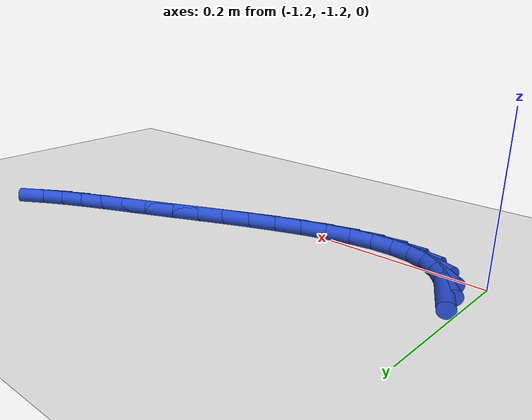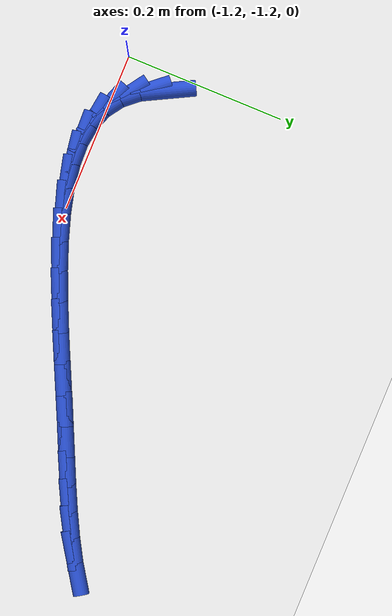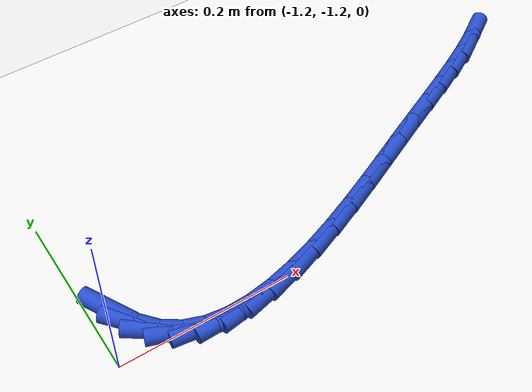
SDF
<sdf version="1.6">
 <world name="default">
  <model name="ground_plane">
   <static>1</static>
   <link name="link">
    <collision name="collision">
     <geometry><plane><normal>0 0 1</normal><size>100 100</size></plane></geometry>
     <surface><friction><ode><mu>100</mu><mu2>50</mu2></ode></friction></surface>
    </collision>
    <visual name="visual">
     <cast_shadows>0</cast_shadows>
     <geometry><plane><normal>0 0 1</normal><size>100 100</size></plane></geometry>
     <material>
      <script><uri>file://media/materials/scripts/gazebo.material</uri><name>Gazebo/WhiteGlow</name></script>
     </material>
    </visual>
   </link>
  </model>
  <model name="line">
   <link name="link_186">
    <pose>-1.1766028740405785 -1.1448081477415086 0.01 0 1.57 -1.0894566197588766</pose>
    <collision name="collision">
     <geometry><cylinder><radius>0.01</radius><length>0.08</length></cylinder></geometry>
    </collision>
    <visual name="visual">
     <material>
      <script><name>Gazebo/Blue</name><uri>file://media/materials/scripts/gazebo.material</uri></script>
     </material>
     <geometry><cylinder><radius>0.01</radius><length>0.08</length></cylinder></geometry>
    </visual>
   </link>
   <link name="link_187">
    <pose>-1.1635276885617831 -1.1698412968110778 0.01 0 1.57 -0.8635601120456357</pose>
    <collision name="collision">
     <geometry><cylinder><radius>0.01</radius><length>0.08</length></cylinder></geometry>
    </collision>
    <visual name="visual">
     <material>
      <script><name>Gazebo/Blue</name><uri>file://media/materials/scripts/gazebo.material</uri></script>
     </material>
     <geometry><cylinder><radius>0.01</radius><length>0.08</length></cylinder></geometry>
    </visual>
   </link>
   <link name="link_188">
    <pose>-1.1471648637215601 -1.1889850504934512 0.01 0 1.57 -0.600858885222188</pose>
    <collision name="collision">
     <geometry><cylinder><radius>0.01</radius><length>0.08</length></cylinder></geometry>
    </collision>
    <visual name="visual">
     <material>
      <script><name>Gazebo/Blue</name><uri>file://media/materials/scripts/gazebo.material</uri></script>
     </material>
     <geometry><cylinder><radius>0.01</radius><length>0.08</length></cylinder></geometry>
    </visual>
   </link>
   <link name="link_189">
    <pose>-1.1276044789210666 -1.2023917075368833 0.01 0 1.57 -0.349300942034176</pose>
    <collision name="collision">
     <geometry><cylinder><radius>0.01</radius><length>0.08</length></cylinder></geometry>
    </collision>
    <visual name="visual">
     <material>
      <script><name>Gazebo/Blue</name><uri>file://media/materials/scripts/gazebo.material</uri></script>
     </material>
     <geometry><cylinder><radius>0.01</radius><length>0.08</length></cylinder></geometry>
    </visual>
   </link>
   <link name="link_190">
    <pose>-1.1051564559099074 -1.210568096697456 0.01 0 1.57 -0.1371102453368914</pose>
    <collision name="collision">
     <geometry><cylinder><radius>0.01</radius><length>0.08</length></cylinder></geometry>
    </collision>
    <visual name="visual">
     <material>
      <script><name>Gazebo/Blue</name><uri>file://media/materials/scripts/gazebo.material</uri></script>
     </material>
     <geometry><cylinder><radius>0.01</radius><length>0.08</length></cylinder></geometry>
    </visual>
   </link>
   <link name="link_191">
    <pose>-1.0801307164376883 -1.2140210467312509 0.01 0 1.57 0.02797223500131292</pose>
    <collision name="collision">
     <geometry><cylinder><radius>0.01</radius><length>0.08</length></cylinder></geometry>
    </collision>
    <visual name="visual">
     <material>
      <script><name>Gazebo/Blue</name><uri>file://media/materials/scripts/gazebo.material</uri></script>
     </material>
     <geometry><cylinder><radius>0.01</radius><length>0.08</length></cylinder></geometry>
    </visual>
   </link>
   <link name="link_192">
    <pose>-1.052837182254016 -1.2132573863943508 0.01 0 1.57 0.15175504459204714</pose>
    <collision name="collision">
     <geometry><cylinder><radius>0.01</radius><length>0.08</length></cylinder></geometry>
    </collision>
    <visual name="visual">
     <material>
      <script><name>Gazebo/Blue</name><uri>file://media/materials/scripts/gazebo.material</uri></script>
     </material>
     <geometry><cylinder><radius>0.01</radius><length>0.08</length></cylinder></geometry>
    </visual>
   </link>
   <link name="link_193">
    <pose>-1.023585775108495 -1.208783944442837 0.01 0 1.57 0.24350251986639698</pose>
    <collision name="collision">
     <geometry><cylinder><radius>0.01</radius><length>0.08</length></cylinder></geometry>
    </collision>
    <visual name="visual">
     <material>
      <script><name>Gazebo/Blue</name><uri>file://media/materials/scripts/gazebo.material</uri></script>
     </material>
     <geometry><cylinder><radius>0.01</radius><length>0.08</length></cylinder></geometry>
    </visual>
   </link>
   <link name="link_194">
    <pose>-0.9926864167507315 -1.2011075496327916 0.01 0 1.57 0.31129350078295415</pose>
    <collision name="collision">
     <geometry><cylinder><radius>0.01</radius><length>0.08</length></cylinder></geometry>
    </collision>
    <visual name="visual">
     <material>
      <script><name>Gazebo/Blue</name><uri>file://media/materials/scripts/gazebo.material</uri></script>
     </material>
     <geometry><cylinder><radius>0.01</radius><length>0.08</length></cylinder></geometry>
    </visual>
   </link>
   <link name="link_195">
    <pose>-0.9604490289303319 -1.190735030720297 0.01 0 1.57 0.3610682496942305</pose>
    <collision name="collision">
     <geometry><cylinder><radius>0.01</radius><length>0.08</length></cylinder></geometry>
    </collision>
    <visual name="visual">
     <material>
      <script><name>Gazebo/Blue</name><uri>file://media/materials/scripts/gazebo.material</uri></script>
     </material>
     <geometry><cylinder><radius>0.01</radius><length>0.08</length></cylinder></geometry>
    </visual>
   </link>
   <link name="link_196">
    <pose>-0.9271835333969015 -1.1781732164614351 0.01 0 1.57 0.3969057482984091</pose>
    <collision name="collision">
     <geometry><cylinder><radius>0.01</radius><length>0.08</length></cylinder></geometry>
    </collision>
    <visual name="visual">
     <material>
      <script><name>Gazebo/Blue</name><uri>file://media/materials/scripts/gazebo.material</uri></script>
     </material>
     <geometry><cylinder><radius>0.01</radius><length>0.08</length></cylinder></geometry>
    </visual>
   </link>
   <link name="link_197">
    <pose>-0.893199851900046 -1.1639289356122875 0.01 0 1.57 0.421487954453558</pose>
    <collision name="collision">
     <geometry><cylinder><radius>0.01</radius><length>0.08</length></cylinder></geometry>
    </collision>
    <visual name="visual">
     <material>
      <script><name>Gazebo/Blue</name><uri>file://media/materials/scripts/gazebo.material</uri></script>
     </material>
     <geometry><cylinder><radius>0.01</radius><length>0.08</length></cylinder></geometry>
    </visual>
   </link>
   <link name="link_198">
    <pose>-0.8588079061893711 -1.1485090169289363 0.01 0 1.57 0.43646667608903267</pose>
    <collision name="collision">
     <geometry><cylinder><radius>0.01</radius><length>0.08</length></cylinder></geometry>
    </collision>
    <visual name="visual">
     <material>
      <script><name>Gazebo/Blue</name><uri>file://media/materials/scripts/gazebo.material</uri></script>
     </material>
     <geometry><cylinder><radius>0.01</radius><length>0.08</length></cylinder></geometry>
    </visual>
   </link>
   <link name="link_199">
    <pose>-0.8243176180144829 -1.1324202891674637 0.01 0 1.57 0.44269404365704784</pose>
    <collision name="collision">
     <geometry><cylinder><radius>0.01</radius><length>0.08</length></cylinder></geometry>
    </collision>
    <visual name="visual">
     <material>
      <script><name>Gazebo/Blue</name><uri>file://media/materials/scripts/gazebo.material</uri></script>
     </material>
     <geometry><cylinder><radius>0.01</radius><length>0.08</length></cylinder></geometry>
    </visual>
   </link>
   <link name="link_200">
    <pose>-0.7900389091249869 -1.1161695810839514 0.01 0 1.57 0.44033484084312347</pose>
    <collision name="collision">
     <geometry><cylinder><radius>0.01</radius><length>0.08</length></cylinder></geometry>
    </collision>
    <visual name="visual">
     <material>
      <script><name>Gazebo/Blue</name><uri>file://media/materials/scripts/gazebo.material</uri></script>
     </material>
     <geometry><cylinder><radius>0.01</radius><length>0.08</length></cylinder></geometry>
    </visual>
   </link>
   <link name="link_201">
    <pose>-0.7562816951112996 -1.1002635314018712 0.01 0 1.57 0.43348202828956434</pose>
    <collision name="collision">
     <geometry><cylinder><radius>0.01</radius><length>0.08</length></cylinder></geometry>
    </collision>
    <visual name="visual">
     <material>
      <script><name>Gazebo/Blue</name><uri>file://media/materials/scripts/gazebo.material</uri></script>
     </material>
     <geometry><cylinder><radius>0.01</radius><length>0.08</length></cylinder></geometry>
    </visual>
   </link>
   <link name="link_202">
    <pose>-0.7233498140843303 -1.0850212672669302 0.01 0 1.57 0.43530280627934786</pose>
    <collision name="collision">
     <geometry><cylinder><radius>0.01</radius><length>0.08</length></cylinder></geometry>
    </collision>
    <visual name="visual">
     <material>
      <script><name>Gazebo/Blue</name><uri>file://media/materials/scripts/gazebo.material</uri></script>
     </material>
     <geometry><cylinder><radius>0.01</radius><length>0.08</length></cylinder></geometry>
    </visual>
   </link>
   <link name="link_203">
    <pose>-0.6915296417855397 -1.0702231404258593 0.01 0 1.57 0.44927379874328877</pose>
    <collision name="collision">
     <geometry><cylinder><radius>0.01</radius><length>0.08</length></cylinder></geometry>
    </collision>
    <visual name="visual">
     <material>
      <script><name>Gazebo/Blue</name><uri>file://media/materials/scripts/gazebo.material</uri></script>
     </material>
     <geometry><cylinder><radius>0.01</radius><length>0.08</length></cylinder></geometry>
    </visual>
   </link>
   <link name="link_204">
    <pose>-0.6611044369498905 -1.0555533320326593 0.01 0 1.57 0.4770209929159856</pose>
    <collision name="collision">
     <geometry><cylinder><radius>0.01</radius><length>0.08</length></cylinder></geometry>
    </collision>
    <visual name="visual">
     <material>
      <script><name>Gazebo/Blue</name><uri>file://media/materials/scripts/gazebo.material</uri></script>
     </material>
     <geometry><cylinder><radius>0.01</radius><length>0.08</length></cylinder></geometry>
    </visual>
   </link>
   <link name="link_205">
    <pose>-0.6323574583123451 -1.0406960232413305 0.01 0 1.57 0.5206823062699747</pose>
    <collision name="collision">
     <geometry><cylinder><radius>0.01</radius><length>0.08</length></cylinder></geometry>
    </collision>
    <visual name="visual">
     <material>
      <script><name>Gazebo/Blue</name><uri>file://media/materials/scripts/gazebo.material</uri></script>
     </material>
     <geometry><cylinder><radius>0.01</radius><length>0.08</length></cylinder></geometry>
    </visual>
   </link>
   <link name="link_206">
    <pose>-0.6055719646078654 -1.0253353952058724 0.01 0 1.57 0.5828866585829534</pose>
    <collision name="collision">
     <geometry><cylinder><radius>0.01</radius><length>0.08</length></cylinder></geometry>
    </collision>
    <visual name="visual">
     <material>
      <script><name>Gazebo/Blue</name><uri>file://media/materials/scripts/gazebo.material</uri></script>
     </material>
     <geometry><cylinder><radius>0.01</radius><length>0.08</length></cylinder></geometry>
    </visual>
   </link>
  </model>
 </world>
</sdf>
